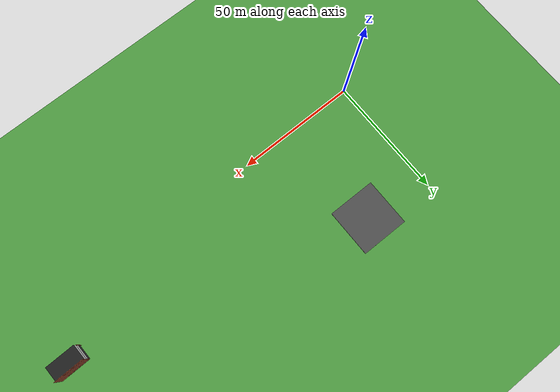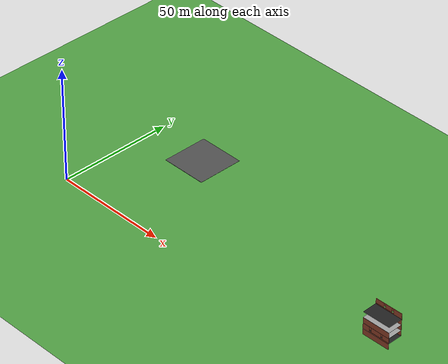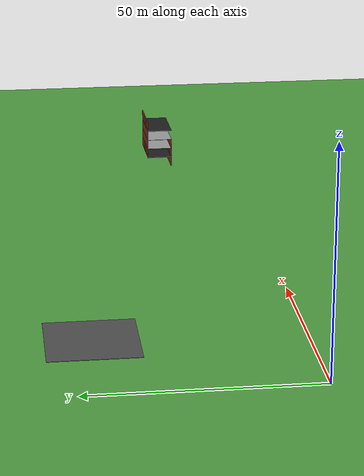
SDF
<sdf version="1.7">
 <world name="default">
  <model name="ground_plane">
   <static>1</static>
   <link name="link">
    <collision name="collision">
     <geometry><plane><normal>0 0 1</normal><size>100 100</size></plane></geometry>
     <surface>
      <contact><collide_bitmask>65535</collide_bitmask></contact>
      <friction><ode><mu>100</mu><mu2>50</mu2></ode></friction>
     </surface>
    </collision>
    <visual name="grass">
     <pose>0 0 -0.1 0 -0 0</pose>
     <cast_shadows>0</cast_shadows>
     <geometry><plane><normal>0 0 1</normal><size>1000 1000</size></plane></geometry>
     <material>
      <script><uri>file://media/materials/scripts/gazebo.material</uri><name>Gazebo/Grass</name></script>
     </material>
    </visual>
   </link>
  </model>
  <model name="asphalt_plane">
   <static>1</static>
   <link name="link">
    <collision name="collision"><geometry><box><size>20 20 0.1</size></box></geometry></collision>
    <visual name="visual">
     <cast_shadows>0</cast_shadows>
     <geometry><box><size>20 20 0.1</size></box></geometry>
     <material>
      <script>
       <uri>model://asphalt_plane/materials/scripts</uri>
       <uri>model://asphalt_plane/materials/textures</uri>
       <name>vrc/asphalt</name>
      </script>
     </material>
    </visual>
   </link>
   <pose>26.7323 45.4974 0 0 -0 0</pose>
  </model>
  <model name="my_building_1">
   <link name="Floor_13">
    <pose>-4.12557 0 2.5 0 -0 0</pose>
    <inertial>
     <mass>1</mass>
     <inertia><ixx>1</ixx><ixy>0</ixy><ixz>0</ixz><iyy>1</iyy><iyz>0</iyz><izz>1</izz></inertia>
    </inertial>
    <visual name="Floor_13_Visual">
     <pose>0 0 0.05 0 -0 0</pose>
     <geometry><box><size>6.5 12.25 0.1</size></box></geometry>
     <material>
      <script><uri>file://media/materials/scripts/gazebo.material</uri><name>Gazebo/Black</name></script>
      <ambient>1 1 1 1</ambient>
      <shader type="pixel"><normal_map>__default__</normal_map></shader>
      <diffuse>0 0 0 1</diffuse>
      <specular>0.1 0.1 0.1 1</specular>
      <emissive>0 0 0 1</emissive>
     </material>
     <meta><layer>1</layer></meta>
    </visual>
    <collision name="Floor_13_Collision">
     <pose>0 0 0.05 0 -0 0</pose>
     <geometry><box><size>6.5 12.25 0.1</size></box></geometry>
     <surface>
      <friction>
       <ode><mu>1</mu><mu2>1</mu2><fdir1>0 0 0</fdir1><slip1>0</slip1><slip2>0</slip2></ode>
       <torsional>
        <coefficient>1</coefficient>
        <patch_radius>0</patch_radius>
        <surface_radius>0</surface_radius>
        <use_patch_radius>1</use_patch_radius>
        <ode><slip>0</slip></ode>
       </torsional>
      </friction>
      <bounce><restitution_coefficient>0</restitution_coefficient><threshold>1e+06</threshold></bounce>
      <contact>
       <collide_without_contact>0</collide_without_contact>
       <collide_without_contact_bitmask>1</collide_without_contact_bitmask>
       <collide_bitmask>1</collide_bitmask>
       <ode>
        <soft_cfm>0</soft_cfm>
        <soft_erp>0.2</soft_erp>
        <kp>1e+13</kp>
        <kd>1</kd>
        <max_vel>0.01</max_vel>
        <min_depth>0</min_depth>
       </ode>
       <bullet>
        <split_impulse>1</split_impulse>
        <split_impulse_penetration_threshold>-0.01</split_impulse_penetration_threshold>
        <soft_cfm>0</soft_cfm>
        <soft_erp>0.2</soft_erp>
        <kp>1e+13</kp>
        <kd>1</kd>
       </bullet>
      </contact>
     </surface>
    </collision>
   </link>
   <link name="Floor_14">
    <pose>-4.12557 0 5 0 -0 0</pose>
    <visual name="Floor_14_Visual">
     <pose>0 0 0.05 0 -0 0</pose>
     <geometry><box><size>6.5 12.25 0.1</size></box></geometry>
     <material>
      <script><uri>file://media/materials/scripts/gazebo.material</uri><name>Gazebo/Grey</name></script>
      <ambient>1 1 1 1</ambient>
      <shader type="pixel"/>
     </material>
     <meta><layer>2</layer></meta>
    </visual>
    <collision name="Floor_14_Collision">
     <pose>0 0 0.05 0 -0 0</pose>
     <geometry><box><size>6.5 12.25 0.1</size></box></geometry>
     <surface>
      <friction>
       <ode><mu>1</mu><mu2>1</mu2><fdir1>0 0 0</fdir1><slip1>0</slip1><slip2>0</slip2></ode>
       <torsional>
        <coefficient>1</coefficient>
        <patch_radius>0</patch_radius>
        <surface_radius>0</surface_radius>
        <use_patch_radius>1</use_patch_radius>
        <ode><slip>0</slip></ode>
       </torsional>
      </friction>
      <bounce><restitution_coefficient>0</restitution_coefficient><threshold>1e+06</threshold></bounce>
      <contact>
       <collide_without_contact>0</collide_without_contact>
       <collide_without_contact_bitmask>1</collide_without_contact_bitmask>
       <collide_bitmask>1</collide_bitmask>
       <ode>
        <soft_cfm>0</soft_cfm>
        <soft_erp>0.2</soft_erp>
        <kp>1e+13</kp>
        <kd>1</kd>
        <max_vel>0.01</max_vel>
        <min_depth>0</min_depth>
       </ode>
       <bullet>
        <split_impulse>1</split_impulse>
        <split_impulse_penetration_threshold>-0.01</split_impulse_penetration_threshold>
        <soft_cfm>0</soft_cfm>
        <soft_erp>0.2</soft_erp>
        <kp>1e+13</kp>
        <kd>1</kd>
       </bullet>
      </contact>
     </surface>
    </collision>
   </link>
   <link name="Floor_15">
    <pose>-4.12557 0 7.5 0 -0 0</pose>
    <visual name="Floor_15_Visual">
     <pose>0 0 0.05 0 -0 0</pose>
     <geometry><box><size>6.5 12.25 0.1</size></box></geometry>
     <material>
      <script><uri>file://media/materials/scripts/gazebo.material</uri><name>Gazebo/Grey</name></script>
      <ambient>1 1 1 1</ambient>
      <shader type="pixel"/>
     </material>
     <meta><layer>3</layer></meta>
    </visual>
    <collision name="Floor_15_Collision">
     <pose>0 0 0.05 0 -0 0</pose>
     <geometry><box><size>6.5 12.25 0.1</size></box></geometry>
     <surface>
      <friction>
       <ode><mu>1</mu><mu2>1</mu2><fdir1>0 0 0</fdir1><slip1>0</slip1><slip2>0</slip2></ode>
       <torsional>
        <coefficient>1</coefficient>
        <patch_radius>0</patch_radius>
        <surface_radius>0</surface_radius>
        <use_patch_radius>1</use_patch_radius>
        <ode><slip>0</slip></ode>
       </torsional>
      </friction>
      <bounce><restitution_coefficient>0</restitution_coefficient><threshold>1e+06</threshold></bounce>
      <contact>
       <collide_without_contact>0</collide_without_contact>
       <collide_without_contact_bitmask>1</collide_without_contact_bitmask>
       <collide_bitmask>1</collide_bitmask>
       <ode>
        <soft_cfm>0</soft_cfm>
        <soft_erp>0.2</soft_erp>
        <kp>1e+13</kp>
        <kd>1</kd>
        <max_vel>0.01</max_vel>
        <min_depth>0</min_depth>
       </ode>
       <bullet>
        <split_impulse>1</split_impulse>
        <split_impulse_penetration_threshold>-0.01</split_impulse_penetration_threshold>
        <soft_cfm>0</soft_cfm>
        <soft_erp>0.2</soft_erp>
        <kp>1e+13</kp>
        <kd>1</kd>
       </bullet>
      </contact>
     </surface>
    </collision>
   </link>
   <link name="Floor_16">
    <pose>-4.12557 0 10 0 -0 0</pose>
    <inertial>
     <mass>1</mass>
     <inertia><ixx>1</ixx><ixy>0</ixy><ixz>0</ixz><iyy>1</iyy><iyz>0</iyz><izz>1</izz></inertia>
    </inertial>
    <visual name="Floor_16_Visual">
     <pose>0 0 0.05 0 -0 0</pose>
     <geometry><box><size>6.5 12.25 0.1</size></box></geometry>
     <material>
      <script><uri>file://media/materials/scripts/gazebo.material</uri><name>Gazebo/Black</name></script>
      <ambient>1 1 1 1</ambient>
      <shader type="pixel"><normal_map>__default__</normal_map></shader>
      <diffuse>0 0 0 1</diffuse>
      <specular>0.1 0.1 0.1 1</specular>
      <emissive>0 0 0 1</emissive>
     </material>
     <meta><layer>4</layer></meta>
    </visual>
    <collision name="Floor_16_Collision">
     <pose>0 0 0.05 0 -0 0</pose>
     <geometry><box><size>6.5 12.25 0.1</size></box></geometry>
     <surface>
      <friction>
       <ode><mu>1</mu><mu2>1</mu2><fdir1>0 0 0</fdir1><slip1>0</slip1><slip2>0</slip2></ode>
       <torsional>
        <coefficient>1</coefficient>
        <patch_radius>0</patch_radius>
        <surface_radius>0</surface_radius>
        <use_patch_radius>1</use_patch_radius>
        <ode><slip>0</slip></ode>
       </torsional>
      </friction>
      <bounce><restitution_coefficient>0</restitution_coefficient><threshold>1e+06</threshold></bounce>
      <contact>
       <collide_without_contact>0</collide_without_contact>
       <collide_without_contact_bitmask>1</collide_without_contact_bitmask>
       <collide_bitmask>1</collide_bitmask>
       <ode>
        <soft_cfm>0</soft_cfm>
        <soft_erp>0.2</soft_erp>
        <kp>1e+13</kp>
        <kd>1</kd>
        <max_vel>0.01</max_vel>
        <min_depth>0</min_depth>
       </ode>
       <bullet>
        <split_impulse>1</split_impulse>
        <split_impulse_penetration_threshold>-0.01</split_impulse_penetration_threshold>
        <soft_cfm>0</soft_cfm>
        <soft_erp>0.2</soft_erp>
        <kp>1e+13</kp>
        <kd>1</kd>
       </bullet>
      </contact>
     </surface>
    </collision>
   </link>
   <link name="Wall_21">
    <pose>-7.30057 0 0 0 0 -1.5708</pose>
    <visual name="Wall_21_Visual">
     <pose>0 0 1.25 0 -0 0</pose>
     <geometry><box><size>12.25 0.15 2.5</size></box></geometry>
     <material>
      <script><uri>file://media/materials/scripts/gazebo.material</uri><name>Gazebo/Bricks</name></script>
      <ambient>1 1 1 1</ambient>
      <shader type="pixel"/>
     </material>
     <meta><layer>0</layer></meta>
    </visual>
    <collision name="Wall_21_Collision">
     <pose>0 0 1.25 0 -0 0</pose>
     <geometry><box><size>12.25 0.15 2.5</size></box></geometry>
     <surface>
      <friction>
       <ode><mu>1</mu><mu2>1</mu2><fdir1>0 0 0</fdir1><slip1>0</slip1><slip2>0</slip2></ode>
       <torsional>
        <coefficient>1</coefficient>
        <patch_radius>0</patch_radius>
        <surface_radius>0</surface_radius>
        <use_patch_radius>1</use_patch_radius>
        <ode><slip>0</slip></ode>
       </torsional>
      </friction>
      <bounce><restitution_coefficient>0</restitution_coefficient><threshold>1e+06</threshold></bounce>
      <contact>
       <collide_without_contact>0</collide_without_contact>
       <collide_without_contact_bitmask>1</collide_without_contact_bitmask>
       <collide_bitmask>1</collide_bitmask>
       <ode>
        <soft_cfm>0</soft_cfm>
        <soft_erp>0.2</soft_erp>
        <kp>1e+13</kp>
        <kd>1</kd>
        <max_vel>0.01</max_vel>
        <min_depth>0</min_depth>
       </ode>
       <bullet>
        <split_impulse>1</split_impulse>
        <split_impulse_penetration_threshold>-0.01</split_impulse_penetration_threshold>
        <soft_cfm>0</soft_cfm>
        <soft_erp>0.2</soft_erp>
        <kp>1e+13</kp>
        <kd>1</kd>
       </bullet>
      </contact>
     </surface>
    </collision>
   </link>
   <link name="Wall_76">
    <pose>-0.950574 0 2.5 0 -0 1.5708</pose>
    <visual name="Wall_76_Visual_4">
     <pose>4.35586 0 1.5 0 -0 0</pose>
     <geometry><box><size>3.53828 0.15 2</size></box></geometry>
     <material>
      <script><uri>file://media/materials/scripts/gazebo.material</uri><name>Gazebo/Bricks</name></script>
      <ambient>1 1 1 1</ambient>
      <shader type="pixel"/>
     </material>
     <meta><layer>1</layer></meta>
    </visual>
    <visual name="Wall_76_Visual_7">
     <pose>2.18672 0 1.9 0 -0 0</pose>
     <geometry><box><size>0.8 0.15 1.2</size></box></geometry>
     <material>
      <script><uri>file://media/materials/scripts/gazebo.material</uri><name>Gazebo/Bricks</name></script>
      <ambient>1 1 1 1</ambient>
      <shader type="pixel"/>
     </material>
     <meta><layer>1</layer></meta>
    </visual>
    <visual name="Wall_76_Visual_5">
     <pose>-2.44171 0 1.9 0 -0 0</pose>
     <geometry><box><size>0.8 0.15 1.2</size></box></geometry>
     <material>
      <script><uri>file://media/materials/scripts/gazebo.material</uri><name>Gazebo/Bricks</name></script>
      <ambient>1 1 1 1</ambient>
      <shader type="pixel"/>
     </material>
     <meta><layer>1</layer></meta>
    </visual>
    <visual name="Wall_76_Visual_6">
     <pose>-0.074293 0 1.9 0 -0 0</pose>
     <geometry><box><size>0.8 0.15 1.2</size></box></geometry>
     <material>
      <script><uri>file://media/materials/scripts/gazebo.material</uri><name>Gazebo/Bricks</name></script>
      <ambient>1 1 1 1</ambient>
      <shader type="pixel"/>
     </material>
     <meta><layer>1</layer></meta>
    </visual>
    <visual name="Wall_76_Visual_0">
     <pose>-4.48336 0 1.25 0 -0 0</pose>
     <geometry><box><size>3.28329 0.15 2.5</size></box></geometry>
     <material>
      <script><uri>file://media/materials/scripts/gazebo.material</uri><name>Gazebo/Bricks</name></script>
      <ambient>1 1 1 1</ambient>
      <shader type="pixel"/>
     </material>
     <meta><layer>1</layer></meta>
    </visual>
    <visual name="Wall_76_Visual_3">
     <pose>1.05621 0 1.5 0 -0 0</pose>
     <geometry><box><size>1.46102 0.15 2</size></box></geometry>
     <material>
      <script><uri>file://media/materials/scripts/gazebo.material</uri><name>Gazebo/Bricks</name></script>
      <ambient>1 1 1 1</ambient>
      <shader type="pixel"/>
     </material>
     <meta><layer>1</layer></meta>
    </visual>
    <visual name="Wall_76_Visual_1">
     <pose>1.64164 0 0.25 0 -0 0</pose>
     <geometry><box><size>8.96671 0.15 0.5</size></box></geometry>
     <material>
      <script><uri>file://media/materials/scripts/gazebo.material</uri><name>Gazebo/Bricks</name></script>
      <ambient>1 1 1 1</ambient>
      <shader type="pixel"/>
     </material>
     <meta><layer>1</layer></meta>
    </visual>
    <visual name="Wall_76_Visual_2">
     <pose>-1.258 0 1.5 0 -0 0</pose>
     <geometry><box><size>1.56742 0.15 2</size></box></geometry>
     <material>
      <script><uri>file://media/materials/scripts/gazebo.material</uri><name>Gazebo/Bricks</name></script>
      <ambient>1 1 1 1</ambient>
      <shader type="pixel"/>
     </material>
     <meta><layer>1</layer></meta>
    </visual>
    <collision name="Wall_76_Collision_3">
     <pose>1.05621 0 1.5 0 -0 0</pose>
     <geometry><box><size>1.46102 0.15 2</size></box></geometry>
     <surface>
      <friction>
       <ode><mu>1</mu><mu2>1</mu2><fdir1>0 0 0</fdir1><slip1>0</slip1><slip2>0</slip2></ode>
       <torsional>
        <coefficient>1</coefficient>
        <patch_radius>0</patch_radius>
        <surface_radius>0</surface_radius>
        <use_patch_radius>1</use_patch_radius>
        <ode><slip>0</slip></ode>
       </torsional>
      </friction>
      <bounce><restitution_coefficient>0</restitution_coefficient><threshold>1e+06</threshold></bounce>
      <contact>
       <collide_without_contact>0</collide_without_contact>
       <collide_without_contact_bitmask>1</collide_without_contact_bitmask>
       <collide_bitmask>1</collide_bitmask>
       <ode>
        <soft_cfm>0</soft_cfm>
        <soft_erp>0.2</soft_erp>
        <kp>1e+13</kp>
        <kd>1</kd>
        <max_vel>0.01</max_vel>
        <min_depth>0</min_depth>
       </ode>
       <bullet>
        <split_impulse>1</split_impulse>
        <split_impulse_penetration_threshold>-0.01</split_impulse_penetration_threshold>
        <soft_cfm>0</soft_cfm>
        <soft_erp>0.2</soft_erp>
        <kp>1e+13</kp>
        <kd>1</kd>
       </bullet>
      </contact>
     </surface>
    </collision>
    <collision name="Wall_76_Collision_1">
     <pose>1.64164 0 0.25 0 -0 0</pose>
     <geometry><box><size>8.96671 0.15 0.5</size></box></geometry>
     <surface>
      <friction>
       <ode><mu>1</mu><mu2>1</mu2><fdir1>0 0 0</fdir1><slip1>0</slip1><slip2>0</slip2></ode>
       <torsional>
        <coefficient>1</coefficient>
        <patch_radius>0</patch_radius>
        <surface_radius>0</surface_radius>
        <use_patch_radius>1</use_patch_radius>
        <ode><slip>0</slip></ode>
       </torsional>
      </friction>
      <bounce><restitution_coefficient>0</restitution_coefficient><threshold>1e+06</threshold></bounce>
      <contact>
       <collide_without_contact>0</collide_without_contact>
       <collide_without_contact_bitmask>1</collide_without_contact_bitmask>
       <collide_bitmask>1</collide_bitmask>
       <ode>
        <soft_cfm>0</soft_cfm>
        <soft_erp>0.2</soft_erp>
        <kp>1e+13</kp>
        <kd>1</kd>
        <max_vel>0.01</max_vel>
        <min_depth>0</min_depth>
       </ode>
       <bullet>
        <split_impulse>1</split_impulse>
        <split_impulse_penetration_threshold>-0.01</split_impulse_penetration_threshold>
        <soft_cfm>0</soft_cfm>
        <soft_erp>0.2</soft_erp>
        <kp>1e+13</kp>
        <kd>1</kd>
       </bullet>
      </contact>
     </surface>
    </collision>
    <collision name="Wall_76_Collision_6">
     <pose>-0.074293 0 1.9 0 -0 0</pose>
     <geometry><box><size>0.8 0.15 1.2</size></box></geometry>
     <surface>
      <friction>
       <ode><mu>1</mu><mu2>1</mu2><fdir1>0 0 0</fdir1><slip1>0</slip1><slip2>0</slip2></ode>
       <torsional>
        <coefficient>1</coefficient>
        <patch_radius>0</patch_radius>
        <surface_radius>0</surface_radius>
        <use_patch_radius>1</use_patch_radius>
        <ode><slip>0</slip></ode>
       </torsional>
      </friction>
      <bounce><restitution_coefficient>0</restitution_coefficient><threshold>1e+06</threshold></bounce>
      <contact>
       <collide_without_contact>0</collide_without_contact>
       <collide_without_contact_bitmask>1</collide_without_contact_bitmask>
       <collide_bitmask>1</collide_bitmask>
       <ode>
        <soft_cfm>0</soft_cfm>
        <soft_erp>0.2</soft_erp>
        <kp>1e+13</kp>
        <kd>1</kd>
        <max_vel>0.01</max_vel>
        <min_depth>0</min_depth>
       </ode>
       <bullet>
        <split_impulse>1</split_impulse>
        <split_impulse_penetration_threshold>-0.01</split_impulse_penetration_threshold>
        <soft_cfm>0</soft_cfm>
        <soft_erp>0.2</soft_erp>
        <kp>1e+13</kp>
        <kd>1</kd>
       </bullet>
      </contact>
     </surface>
    </collision>
    <collision name="Wall_76_Collision_5">
     <pose>-2.44171 0 1.9 0 -0 0</pose>
     <geometry><box><size>0.8 0.15 1.2</size></box></geometry>
     <surface>
      <friction>
       <ode><mu>1</mu><mu2>1</mu2><fdir1>0 0 0</fdir1><slip1>0</slip1><slip2>0</slip2></ode>
       <torsional>
        <coefficient>1</coefficient>
        <patch_radius>0</patch_radius>
        <surface_radius>0</surface_radius>
        <use_patch_radius>1</use_patch_radius>
        <ode><slip>0</slip></ode>
       </torsional>
      </friction>
      <bounce><restitution_coefficient>0</restitution_coefficient><threshold>1e+06</threshold></bounce>
      <contact>
       <collide_without_contact>0</collide_without_contact>
       <collide_without_contact_bitmask>1</collide_without_contact_bitmask>
       <collide_bitmask>1</collide_bitmask>
       <ode>
        <soft_cfm>0</soft_cfm>
        <soft_erp>0.2</soft_erp>
        <kp>1e+13</kp>
        <kd>1</kd>
        <max_vel>0.01</max_vel>
        <min_depth>0</min_depth>
       </ode>
       <bullet>
        <split_impulse>1</split_impulse>
        <split_impulse_penetration_threshold>-0.01</split_impulse_penetration_threshold>
        <soft_cfm>0</soft_cfm>
        <soft_erp>0.2</soft_erp>
        <kp>1e+13</kp>
        <kd>1</kd>
       </bullet>
      </contact>
     </surface>
    </collision>
    <collision name="Wall_76_Collision_0">
     <pose>-4.48336 0 1.25 0 -0 0</pose>
     <geometry><box><size>3.28329 0.15 2.5</size></box></geometry>
     <surface>
      <friction>
       <ode><mu>1</mu><mu2>1</mu2><fdir1>0 0 0</fdir1><slip1>0</slip1><slip2>0</slip2></ode>
       <torsional>
        <coefficient>1</coefficient>
        <patch_radius>0</patch_radius>
        <surface_radius>0</surface_radius>
        <use_patch_radius>1</use_patch_radius>
        <ode><slip>0</slip></ode>
       </torsional>
      </friction>
      <bounce><restitution_coefficient>0</restitution_coefficient><threshold>1e+06</threshold></bounce>
      <contact>
       <collide_without_contact>0</collide_without_contact>
       <collide_without_contact_bitmask>1</collide_without_contact_bitmask>
       <collide_bitmask>1</collide_bitmask>
       <ode>
        <soft_cfm>0</soft_cfm>
        <soft_erp>0.2</soft_erp>
        <kp>1e+13</kp>
        <kd>1</kd>
        <max_vel>0.01</max_vel>
        <min_depth>0</min_depth>
       </ode>
       <bullet>
        <split_impulse>1</split_impulse>
        <split_impulse_penetration_threshold>-0.01</split_impulse_penetration_threshold>
        <soft_cfm>0</soft_cfm>
        <soft_erp>0.2</soft_erp>
        <kp>1e+13</kp>
        <kd>1</kd>
       </bullet>
      </contact>
     </surface>
    </collision>
    <collision name="Wall_76_Collision_2">
     <pose>-1.258 0 1.5 0 -0 0</pose>
     <geometry><box><size>1.56742 0.15 2</size></box></geometry>
     <surface>
      <friction>
       <ode><mu>1</mu><mu2>1</mu2><fdir1>0 0 0</fdir1><slip1>0</slip1><slip2>0</slip2></ode>
       <torsional>
        <coefficient>1</coefficient>
        <patch_radius>0</patch_radius>
        <surface_radius>0</surface_radius>
        <use_patch_radius>1</use_patch_radius>
        <ode><slip>0</slip></ode>
       </torsional>
      </friction>
      <bounce><restitution_coefficient>0</restitution_coefficient><threshold>1e+06</threshold></bounce>
      <contact>
       <collide_without_contact>0</collide_without_contact>
       <collide_without_contact_bitmask>1</collide_without_contact_bitmask>
       <collide_bitmask>1</collide_bitmask>
       <ode>
        <soft_cfm>0</soft_cfm>
        <soft_erp>0.2</soft_erp>
        <kp>1e+13</kp>
        <kd>1</kd>
        <max_vel>0.01</max_vel>
        <min_depth>0</min_depth>
       </ode>
       <bullet>
        <split_impulse>1</split_impulse>
        <split_impulse_penetration_threshold>-0.01</split_impulse_penetration_threshold>
        <soft_cfm>0</soft_cfm>
        <soft_erp>0.2</soft_erp>
        <kp>1e+13</kp>
        <kd>1</kd>
       </bullet>
      </contact>
     </surface>
    </collision>
    <collision name="Wall_76_Collision_7">
     <pose>2.18672 0 1.9 0 -0 0</pose>
     <geometry><box><size>0.8 0.15 1.2</size></box></geometry>
     <surface>
      <friction>
       <ode><mu>1</mu><mu2>1</mu2><fdir1>0 0 0</fdir1><slip1>0</slip1><slip2>0</slip2></ode>
       <torsional>
        <coefficient>1</coefficient>
        <patch_radius>0</patch_radius>
        <surface_radius>0</surface_radius>
        <use_patch_radius>1</use_patch_radius>
        <ode><slip>0</slip></ode>
       </torsional>
      </friction>
      <bounce><restitution_coefficient>0</restitution_coefficient><threshold>1e+06</threshold></bounce>
      <contact>
       <collide_without_contact>0</collide_without_contact>
       <collide_without_contact_bitmask>1</collide_without_contact_bitmask>
       <collide_bitmask>1</collide_bitmask>
       <ode>
        <soft_cfm>0</soft_cfm>
        <soft_erp>0.2</soft_erp>
        <kp>1e+13</kp>
        <kd>1</kd>
        <max_vel>0.01</max_vel>
        <min_depth>0</min_depth>
       </ode>
       <bullet>
        <split_impulse>1</split_impulse>
        <split_impulse_penetration_threshold>-0.01</split_impulse_penetration_threshold>
        <soft_cfm>0</soft_cfm>
        <soft_erp>0.2</soft_erp>
        <kp>1e+13</kp>
        <kd>1</kd>
       </bullet>
      </contact>
     </surface>
    </collision>
    <collision name="Wall_76_Collision_4">
     <pose>4.35586 0 1.5 0 -0 0</pose>
     <geometry><box><size>3.53828 0.15 2</size></box></geometry>
     <surface>
      <friction>
       <ode><mu>1</mu><mu2>1</mu2><fdir1>0 0 0</fdir1><slip1>0</slip1><slip2>0</slip2></ode>
       <torsional>
        <coefficient>1</coefficient>
        <patch_radius>0</patch_radius>
        <surface_radius>0</surface_radius>
        <use_patch_radius>1</use_patch_radius>
        <ode><slip>0</slip></ode>
       </torsional>
      </friction>
      <bounce><restitution_coefficient>0</restitution_coefficient><threshold>1e+06</threshold></bounce>
      <contact>
       <collide_without_contact>0</collide_without_contact>
       <collide_without_contact_bitmask>1</collide_without_contact_bitmask>
       <collide_bitmask>1</collide_bitmask>
       <ode>
        <soft_cfm>0</soft_cfm>
        <soft_erp>0.2</soft_erp>
        <kp>1e+13</kp>
        <kd>1</kd>
        <max_vel>0.01</max_vel>
        <min_depth>0</min_depth>
       </ode>
       <bullet>
        <split_impulse>1</split_impulse>
        <split_impulse_penetration_threshold>-0.01</split_impulse_penetration_threshold>
        <soft_cfm>0</soft_cfm>
        <soft_erp>0.2</soft_erp>
        <kp>1e+13</kp>
        <kd>1</kd>
       </bullet>
      </contact>
     </surface>
    </collision>
   </link>
   <link name="Wall_78">
    <pose>-7.30057 0 2.5 0 0 -1.5708</pose>
    <visual name="Wall_78_Visual_1">
     <pose>1.54304 0 0.25 0 -0 0</pose>
     <geometry><box><size>9.16393 0.15 0.5</size></box></geometry>
     <material>
      <script><uri>file://media/materials/scripts/gazebo.material</uri><name>Gazebo/Bricks</name></script>
      <ambient>1 1 1 1</ambient>
      <shader type="pixel"/>
     </material>
     <meta><layer>1</layer></meta>
    </visual>
    <visual name="Wall_78_Visual_5">
     <pose>2.65451 0 1.9 0 -0 0</pose>
     <geometry><box><size>0.8 0.15 1.2</size></box></geometry>
     <material>
      <script><uri>file://media/materials/scripts/gazebo.material</uri><name>Gazebo/Bricks</name></script>
      <ambient>1 1 1 1</ambient>
      <shader type="pixel"/>
     </material>
     <meta><layer>1</layer></meta>
    </visual>
    <visual name="Wall_78_Visual_3">
     <pose>4.58976 0 1.5 0 -0 0</pose>
     <geometry><box><size>3.07049 0.15 2</size></box></geometry>
     <material>
      <script><uri>file://media/materials/scripts/gazebo.material</uri><name>Gazebo/Bricks</name></script>
      <ambient>1 1 1 1</ambient>
      <shader type="pixel"/>
     </material>
     <meta><layer>1</layer></meta>
    </visual>
    <visual name="Wall_78_Visual_4">
     <pose>-2.63893 0 1.9 0 -0 0</pose>
     <geometry><box><size>0.8 0.15 1.2</size></box></geometry>
     <material>
      <script><uri>file://media/materials/scripts/gazebo.material</uri><name>Gazebo/Bricks</name></script>
      <ambient>1 1 1 1</ambient>
      <shader type="pixel"/>
     </material>
     <meta><layer>1</layer></meta>
    </visual>
    <visual name="Wall_78_Visual_2">
     <pose>0.007793 0 1.5 0 -0 0</pose>
     <geometry><box><size>4.49344 0.15 2</size></box></geometry>
     <material>
      <script><uri>file://media/materials/scripts/gazebo.material</uri><name>Gazebo/Bricks</name></script>
      <ambient>1 1 1 1</ambient>
      <shader type="pixel"/>
     </material>
     <meta><layer>1</layer></meta>
    </visual>
    <visual name="Wall_78_Visual_0">
     <pose>-4.58196 0 1.25 0 -0 0</pose>
     <geometry><box><size>3.08607 0.15 2.5</size></box></geometry>
     <material>
      <script><uri>file://media/materials/scripts/gazebo.material</uri><name>Gazebo/Bricks</name></script>
      <ambient>1 1 1 1</ambient>
      <shader type="pixel"/>
     </material>
     <meta><layer>1</layer></meta>
    </visual>
    <collision name="Wall_78_Collision_0">
     <pose>-4.58196 0 1.25 0 -0 0</pose>
     <geometry><box><size>3.08607 0.15 2.5</size></box></geometry>
     <surface>
      <friction>
       <ode><mu>1</mu><mu2>1</mu2><fdir1>0 0 0</fdir1><slip1>0</slip1><slip2>0</slip2></ode>
       <torsional>
        <coefficient>1</coefficient>
        <patch_radius>0</patch_radius>
        <surface_radius>0</surface_radius>
        <use_patch_radius>1</use_patch_radius>
        <ode><slip>0</slip></ode>
       </torsional>
      </friction>
      <bounce><restitution_coefficient>0</restitution_coefficient><threshold>1e+06</threshold></bounce>
      <contact>
       <collide_without_contact>0</collide_without_contact>
       <collide_without_contact_bitmask>1</collide_without_contact_bitmask>
       <collide_bitmask>1</collide_bitmask>
       <ode>
        <soft_cfm>0</soft_cfm>
        <soft_erp>0.2</soft_erp>
        <kp>1e+13</kp>
        <kd>1</kd>
        <max_vel>0.01</max_vel>
        <min_depth>0</min_depth>
       </ode>
       <bullet>
        <split_impulse>1</split_impulse>
        <split_impulse_penetration_threshold>-0.01</split_impulse_penetration_threshold>
        <soft_cfm>0</soft_cfm>
        <soft_erp>0.2</soft_erp>
        <kp>1e+13</kp>
        <kd>1</kd>
       </bullet>
      </contact>
     </surface>
    </collision>
    <collision name="Wall_78_Collision_1">
     <pose>1.54304 0 0.25 0 -0 0</pose>
     <geometry><box><size>9.16393 0.15 0.5</size></box></geometry>
     <surface>
      <friction>
       <ode><mu>1</mu><mu2>1</mu2><fdir1>0 0 0</fdir1><slip1>0</slip1><slip2>0</slip2></ode>
       <torsional>
        <coefficient>1</coefficient>
        <patch_radius>0</patch_radius>
        <surface_radius>0</surface_radius>
        <use_patch_radius>1</use_patch_radius>
        <ode><slip>0</slip></ode>
       </torsional>
      </friction>
      <bounce><restitution_coefficient>0</restitution_coefficient><threshold>1e+06</threshold></bounce>
      <contact>
       <collide_without_contact>0</collide_without_contact>
       <collide_without_contact_bitmask>1</collide_without_contact_bitmask>
       <collide_bitmask>1</collide_bitmask>
       <ode>
        <soft_cfm>0</soft_cfm>
        <soft_erp>0.2</soft_erp>
        <kp>1e+13</kp>
        <kd>1</kd>
        <max_vel>0.01</max_vel>
        <min_depth>0</min_depth>
       </ode>
       <bullet>
        <split_impulse>1</split_impulse>
        <split_impulse_penetration_threshold>-0.01</split_impulse_penetration_threshold>
        <soft_cfm>0</soft_cfm>
        <soft_erp>0.2</soft_erp>
        <kp>1e+13</kp>
        <kd>1</kd>
       </bullet>
      </contact>
     </surface>
    </collision>
    <collision name="Wall_78_Collision_5">
     <pose>2.65451 0 1.9 0 -0 0</pose>
     <geometry><box><size>0.8 0.15 1.2</size></box></geometry>
     <surface>
      <friction>
       <ode><mu>1</mu><mu2>1</mu2><fdir1>0 0 0</fdir1><slip1>0</slip1><slip2>0</slip2></ode>
       <torsional>
        <coefficient>1</coefficient>
        <patch_radius>0</patch_radius>
        <surface_radius>0</surface_radius>
        <use_patch_radius>1</use_patch_radius>
        <ode><slip>0</slip></ode>
       </torsional>
      </friction>
      <bounce><restitution_coefficient>0</restitution_coefficient><threshold>1e+06</threshold></bounce>
      <contact>
       <collide_without_contact>0</collide_without_contact>
       <collide_without_contact_bitmask>1</collide_without_contact_bitmask>
       <collide_bitmask>1</collide_bitmask>
       <ode>
        <soft_cfm>0</soft_cfm>
        <soft_erp>0.2</soft_erp>
        <kp>1e+13</kp>
        <kd>1</kd>
        <max_vel>0.01</max_vel>
        <min_depth>0</min_depth>
       </ode>
       <bullet>
        <split_impulse>1</split_impulse>
        <split_impulse_penetration_threshold>-0.01</split_impulse_penetration_threshold>
        <soft_cfm>0</soft_cfm>
        <soft_erp>0.2</soft_erp>
        <kp>1e+13</kp>
        <kd>1</kd>
       </bullet>
      </contact>
     </surface>
    </collision>
    <collision name="Wall_78_Collision_3">
     <pose>4.58976 0 1.5 0 -0 0</pose>
     <geometry><box><size>3.07049 0.15 2</size></box></geometry>
     <surface>
      <friction>
       <ode><mu>1</mu><mu2>1</mu2><fdir1>0 0 0</fdir1><slip1>0</slip1><slip2>0</slip2></ode>
       <torsional>
        <coefficient>1</coefficient>
        <patch_radius>0</patch_radius>
        <surface_radius>0</surface_radius>
        <use_patch_radius>1</use_patch_radius>
        <ode><slip>0</slip></ode>
       </torsional>
      </friction>
      <bounce><restitution_coefficient>0</restitution_coefficient><threshold>1e+06</threshold></bounce>
      <contact>
       <collide_without_contact>0</collide_without_contact>
       <collide_without_contact_bitmask>1</collide_without_contact_bitmask>
       <collide_bitmask>1</collide_bitmask>
       <ode>
        <soft_cfm>0</soft_cfm>
        <soft_erp>0.2</soft_erp>
        <kp>1e+13</kp>
        <kd>1</kd>
        <max_vel>0.01</max_vel>
        <min_depth>0</min_depth>
       </ode>
       <bullet>
        <split_impulse>1</split_impulse>
        <split_impulse_penetration_threshold>-0.01</split_impulse_penetration_threshold>
        <soft_cfm>0</soft_cfm>
        <soft_erp>0.2</soft_erp>
        <kp>1e+13</kp>
        <kd>1</kd>
       </bullet>
      </contact>
     </surface>
    </collision>
    <collision name="Wall_78_Collision_4">
     <pose>-2.63893 0 1.9 0 -0 0</pose>
     <geometry><box><size>0.8 0.15 1.2</size></box></geometry>
     <surface>
      <friction>
       <ode><mu>1</mu><mu2>1</mu2><fdir1>0 0 0</fdir1><slip1>0</slip1><slip2>0</slip2></ode>
       <torsional>
        <coefficient>1</coefficient>
        <patch_radius>0</patch_radius>
        <surface_radius>0</surface_radius>
        <use_patch_radius>1</use_patch_radius>
        <ode><slip>0</slip></ode>
       </torsional>
      </friction>
      <bounce><restitution_coefficient>0</restitution_coefficient><threshold>1e+06</threshold></bounce>
      <contact>
       <collide_without_contact>0</collide_without_contact>
       <collide_without_contact_bitmask>1</collide_without_contact_bitmask>
       <collide_bitmask>1</collide_bitmask>
       <ode>
        <soft_cfm>0</soft_cfm>
        <soft_erp>0.2</soft_erp>
        <kp>1e+13</kp>
        <kd>1</kd>
        <max_vel>0.01</max_vel>
        <min_depth>0</min_depth>
       </ode>
       <bullet>
        <split_impulse>1</split_impulse>
        <split_impulse_penetration_threshold>-0.01</split_impulse_penetration_threshold>
        <soft_cfm>0</soft_cfm>
        <soft_erp>0.2</soft_erp>
        <kp>1e+13</kp>
        <kd>1</kd>
       </bullet>
      </contact>
     </surface>
    </collision>
    <collision name="Wall_78_Collision_2">
     <pose>0.007793 0 1.5 0 -0 0</pose>
     <geometry><box><size>4.49344 0.15 2</size></box></geometry>
     <surface>
      <friction>
       <ode><mu>1</mu><mu2>1</mu2><fdir1>0 0 0</fdir1><slip1>0</slip1><slip2>0</slip2></ode>
       <torsional>
        <coefficient>1</coefficient>
        <patch_radius>0</patch_radius>
        <surface_radius>0</surface_radius>
        <use_patch_radius>1</use_patch_radius>
        <ode><slip>0</slip></ode>
       </torsional>
      </friction>
      <bounce><restitution_coefficient>0</restitution_coefficient><threshold>1e+06</threshold></bounce>
      <contact>
       <collide_without_contact>0</collide_without_contact>
       <collide_without_contact_bitmask>1</collide_without_contact_bitmask>
       <collide_bitmask>1</collide_bitmask>
       <ode>
        <soft_cfm>0</soft_cfm>
        <soft_erp>0.2</soft_erp>
        <kp>1e+13</kp>
        <kd>1</kd>
        <max_vel>0.01</max_vel>
        <min_depth>0</min_depth>
       </ode>
       <bullet>
        <split_impulse>1</split_impulse>
        <split_impulse_penetration_threshold>-0.01</split_impulse_penetration_threshold>
        <soft_cfm>0</soft_cfm>
        <soft_erp>0.2</soft_erp>
        <kp>1e+13</kp>
        <kd>1</kd>
       </bullet>
      </contact>
     </surface>
    </collision>
   </link>
   <link name="Wall_80">
    <pose>-0.950574 0 5 0 -0 1.5708</pose>
    <visual name="Wall_80_Visual">
     <pose>0 0 1.25 0 -0 0</pose>
     <geometry><box><size>12.25 0.15 2.5</size></box></geometry>
     <material>
      <script><uri>file://media/materials/scripts/gazebo.material</uri><name>Gazebo/Bricks</name></script>
      <ambient>1 1 1 1</ambient>
      <shader type="pixel"/>
     </material>
     <meta><layer>2</layer></meta>
    </visual>
    <collision name="Wall_80_Collision">
     <pose>0 0 1.25 0 -0 0</pose>
     <geometry><box><size>12.25 0.15 2.5</size></box></geometry>
     <surface>
      <friction>
       <ode><mu>1</mu><mu2>1</mu2><fdir1>0 0 0</fdir1><slip1>0</slip1><slip2>0</slip2></ode>
       <torsional>
        <coefficient>1</coefficient>
        <patch_radius>0</patch_radius>
        <surface_radius>0</surface_radius>
        <use_patch_radius>1</use_patch_radius>
        <ode><slip>0</slip></ode>
       </torsional>
      </friction>
      <bounce><restitution_coefficient>0</restitution_coefficient><threshold>1e+06</threshold></bounce>
      <contact>
       <collide_without_contact>0</collide_without_contact>
       <collide_without_contact_bitmask>1</collide_without_contact_bitmask>
       <collide_bitmask>1</collide_bitmask>
       <ode>
        <soft_cfm>0</soft_cfm>
        <soft_erp>0.2</soft_erp>
        <kp>1e+13</kp>
        <kd>1</kd>
        <max_vel>0.01</max_vel>
        <min_depth>0</min_depth>
       </ode>
       <bullet>
        <split_impulse>1</split_impulse>
        <split_impulse_penetration_threshold>-0.01</split_impulse_penetration_threshold>
        <soft_cfm>0</soft_cfm>
        <soft_erp>0.2</soft_erp>
        <kp>1e+13</kp>
        <kd>1</kd>
       </bullet>
      </contact>
     </surface>
    </collision>
   </link>
   <link name="Wall_82">
    <pose>-7.30057 0 5 0 0 -1.5708</pose>
    <visual name="Wall_82_Visual">
     <pose>0 0 1.25 0 -0 0</pose>
     <geometry><box><size>12.25 0.15 2.5</size></box></geometry>
     <material>
      <script><uri>file://media/materials/scripts/gazebo.material</uri><name>Gazebo/Bricks</name></script>
      <ambient>1 1 1 1</ambient>
      <shader type="pixel"/>
     </material>
     <meta><layer>2</layer></meta>
    </visual>
    <collision name="Wall_82_Collision">
     <pose>0 0 1.25 0 -0 0</pose>
     <geometry><box><size>12.25 0.15 2.5</size></box></geometry>
     <surface>
      <friction>
       <ode><mu>1</mu><mu2>1</mu2><fdir1>0 0 0</fdir1><slip1>0</slip1><slip2>0</slip2></ode>
       <torsional>
        <coefficient>1</coefficient>
        <patch_radius>0</patch_radius>
        <surface_radius>0</surface_radius>
        <use_patch_radius>1</use_patch_radius>
        <ode><slip>0</slip></ode>
       </torsional>
      </friction>
      <bounce><restitution_coefficient>0</restitution_coefficient><threshold>1e+06</threshold></bounce>
      <contact>
       <collide_without_contact>0</collide_without_contact>
       <collide_without_contact_bitmask>1</collide_without_contact_bitmask>
       <collide_bitmask>1</collide_bitmask>
       <ode>
        <soft_cfm>0</soft_cfm>
        <soft_erp>0.2</soft_erp>
        <kp>1e+13</kp>
        <kd>1</kd>
        <max_vel>0.01</max_vel>
        <min_depth>0</min_depth>
       </ode>
       <bullet>
        <split_impulse>1</split_impulse>
        <split_impulse_penetration_threshold>-0.01</split_impulse_penetration_threshold>
        <soft_cfm>0</soft_cfm>
        <soft_erp>0.2</soft_erp>
        <kp>1e+13</kp>
        <kd>1</kd>
       </bullet>
      </contact>
     </surface>
    </collision>
   </link>
   <link name="Wall_84">
    <pose>-0.950574 0 7.5 0 -0 1.5708</pose>
    <visual name="Wall_84_Visual">
     <pose>0 0 1.25 0 -0 0</pose>
     <geometry><box><size>12.25 0.15 2.5</size></box></geometry>
     <material>
      <script><uri>file://media/materials/scripts/gazebo.material</uri><name>Gazebo/Bricks</name></script>
      <ambient>1 1 1 1</ambient>
      <shader type="pixel"/>
     </material>
     <meta><layer>3</layer></meta>
    </visual>
    <collision name="Wall_84_Collision">
     <pose>0 0 1.25 0 -0 0</pose>
     <geometry><box><size>12.25 0.15 2.5</size></box></geometry>
     <surface>
      <friction>
       <ode><mu>1</mu><mu2>1</mu2><fdir1>0 0 0</fdir1><slip1>0</slip1><slip2>0</slip2></ode>
       <torsional>
        <coefficient>1</coefficient>
        <patch_radius>0</patch_radius>
        <surface_radius>0</surface_radius>
        <use_patch_radius>1</use_patch_radius>
        <ode><slip>0</slip></ode>
       </torsional>
      </friction>
      <bounce><restitution_coefficient>0</restitution_coefficient><threshold>1e+06</threshold></bounce>
      <contact>
       <collide_without_contact>0</collide_without_contact>
       <collide_without_contact_bitmask>1</collide_without_contact_bitmask>
       <collide_bitmask>1</collide_bitmask>
       <ode>
        <soft_cfm>0</soft_cfm>
        <soft_erp>0.2</soft_erp>
        <kp>1e+13</kp>
        <kd>1</kd>
        <max_vel>0.01</max_vel>
        <min_depth>0</min_depth>
       </ode>
       <bullet>
        <split_impulse>1</split_impulse>
        <split_impulse_penetration_threshold>-0.01</split_impulse_penetration_threshold>
        <soft_cfm>0</soft_cfm>
        <soft_erp>0.2</soft_erp>
        <kp>1e+13</kp>
        <kd>1</kd>
       </bullet>
      </contact>
     </surface>
    </collision>
   </link>
   <link name="Wall_88">
    <pose>-0.950574 0 10 0 -0 1.5708</pose>
    <visual name="Wall_88_Visual_1">
     <pose>1.94755 0 0.25 0 -0 0</pose>
     <geometry><box><size>8.35491 0.15 0.5</size></box></geometry>
     <material>
      <script><uri>file://media/materials/scripts/gazebo.material</uri><name>Gazebo/Bricks</name></script>
      <ambient>1 1 1 1</ambient>
      <shader type="pixel"/>
     </material>
     <meta><layer>4</layer></meta>
    </visual>
    <visual name="Wall_88_Visual_2">
     <pose>-0.007793 0 1.5 0 -0 0</pose>
     <geometry><box><size>2.84423 0.15 2</size></box></geometry>
     <material>
      <script><uri>file://media/materials/scripts/gazebo.material</uri><name>Gazebo/Bricks</name></script>
      <ambient>1 1 1 1</ambient>
      <shader type="pixel"/>
     </material>
     <meta><layer>4</layer></meta>
    </visual>
    <visual name="Wall_88_Visual_4">
     <pose>-1.82991 0 1.9 0 -0 0</pose>
     <geometry><box><size>0.8 0.15 1.2</size></box></geometry>
     <material>
      <script><uri>file://media/materials/scripts/gazebo.material</uri><name>Gazebo/Bricks</name></script>
      <ambient>1 1 1 1</ambient>
      <shader type="pixel"/>
     </material>
     <meta><layer>4</layer></meta>
    </visual>
    <visual name="Wall_88_Visual_5">
     <pose>1.81432 0 1.9 0 -0 0</pose>
     <geometry><box><size>0.8 0.15 1.2</size></box></geometry>
     <material>
      <script><uri>file://media/materials/scripts/gazebo.material</uri><name>Gazebo/Bricks</name></script>
      <ambient>1 1 1 1</ambient>
      <shader type="pixel"/>
     </material>
     <meta><layer>4</layer></meta>
    </visual>
    <visual name="Wall_88_Visual_3">
     <pose>4.16966 0 1.5 0 -0 0</pose>
     <geometry><box><size>3.91068 0.15 2</size></box></geometry>
     <material>
      <script><uri>file://media/materials/scripts/gazebo.material</uri><name>Gazebo/Bricks</name></script>
      <ambient>1 1 1 1</ambient>
      <shader type="pixel"/>
     </material>
     <meta><layer>4</layer></meta>
    </visual>
    <visual name="Wall_88_Visual_0">
     <pose>-4.17745 0 1.25 0 -0 0</pose>
     <geometry><box><size>3.89509 0.15 2.5</size></box></geometry>
     <material>
      <script><uri>file://media/materials/scripts/gazebo.material</uri><name>Gazebo/Bricks</name></script>
      <ambient>1 1 1 1</ambient>
      <shader type="pixel"/>
     </material>
     <meta><layer>4</layer></meta>
    </visual>
    <collision name="Wall_88_Collision_4">
     <pose>-1.82991 0 1.9 0 -0 0</pose>
     <geometry><box><size>0.8 0.15 1.2</size></box></geometry>
     <surface>
      <friction>
       <ode><mu>1</mu><mu2>1</mu2><fdir1>0 0 0</fdir1><slip1>0</slip1><slip2>0</slip2></ode>
       <torsional>
        <coefficient>1</coefficient>
        <patch_radius>0</patch_radius>
        <surface_radius>0</surface_radius>
        <use_patch_radius>1</use_patch_radius>
        <ode><slip>0</slip></ode>
       </torsional>
      </friction>
      <bounce><restitution_coefficient>0</restitution_coefficient><threshold>1e+06</threshold></bounce>
      <contact>
       <collide_without_contact>0</collide_without_contact>
       <collide_without_contact_bitmask>1</collide_without_contact_bitmask>
       <collide_bitmask>1</collide_bitmask>
       <ode>
        <soft_cfm>0</soft_cfm>
        <soft_erp>0.2</soft_erp>
        <kp>1e+13</kp>
        <kd>1</kd>
        <max_vel>0.01</max_vel>
        <min_depth>0</min_depth>
       </ode>
       <bullet>
        <split_impulse>1</split_impulse>
        <split_impulse_penetration_threshold>-0.01</split_impulse_penetration_threshold>
        <soft_cfm>0</soft_cfm>
        <soft_erp>0.2</soft_erp>
        <kp>1e+13</kp>
        <kd>1</kd>
       </bullet>
      </contact>
     </surface>
    </collision>
    <collision name="Wall_88_Collision_5">
     <pose>1.81432 0 1.9 0 -0 0</pose>
     <geometry><box><size>0.8 0.15 1.2</size></box></geometry>
     <surface>
      <friction>
       <ode><mu>1</mu><mu2>1</mu2><fdir1>0 0 0</fdir1><slip1>0</slip1><slip2>0</slip2></ode>
       <torsional>
        <coefficient>1</coefficient>
        <patch_radius>0</patch_radius>
        <surface_radius>0</surface_radius>
        <use_patch_radius>1</use_patch_radius>
        <ode><slip>0</slip></ode>
       </torsional>
      </friction>
      <bounce><restitution_coefficient>0</restitution_coefficient><threshold>1e+06</threshold></bounce>
      <contact>
       <collide_without_contact>0</collide_without_contact>
       <collide_without_contact_bitmask>1</collide_without_contact_bitmask>
       <collide_bitmask>1</collide_bitmask>
       <ode>
        <soft_cfm>0</soft_cfm>
        <soft_erp>0.2</soft_erp>
        <kp>1e+13</kp>
        <kd>1</kd>
        <max_vel>0.01</max_vel>
        <min_depth>0</min_depth>
       </ode>
       <bullet>
        <split_impulse>1</split_impulse>
        <split_impulse_penetration_threshold>-0.01</split_impulse_penetration_threshold>
        <soft_cfm>0</soft_cfm>
        <soft_erp>0.2</soft_erp>
        <kp>1e+13</kp>
        <kd>1</kd>
       </bullet>
      </contact>
     </surface>
    </collision>
    <collision name="Wall_88_Collision_2">
     <pose>-0.007793 0 1.5 0 -0 0</pose>
     <geometry><box><size>2.84423 0.15 2</size></box></geometry>
     <surface>
      <friction>
       <ode><mu>1</mu><mu2>1</mu2><fdir1>0 0 0</fdir1><slip1>0</slip1><slip2>0</slip2></ode>
       <torsional>
        <coefficient>1</coefficient>
        <patch_radius>0</patch_radius>
        <surface_radius>0</surface_radius>
        <use_patch_radius>1</use_patch_radius>
        <ode><slip>0</slip></ode>
       </torsional>
      </friction>
      <bounce><restitution_coefficient>0</restitution_coefficient><threshold>1e+06</threshold></bounce>
      <contact>
       <collide_without_contact>0</collide_without_contact>
       <collide_without_contact_bitmask>1</collide_without_contact_bitmask>
       <collide_bitmask>1</collide_bitmask>
       <ode>
        <soft_cfm>0</soft_cfm>
        <soft_erp>0.2</soft_erp>
        <kp>1e+13</kp>
        <kd>1</kd>
        <max_vel>0.01</max_vel>
        <min_depth>0</min_depth>
       </ode>
       <bullet>
        <split_impulse>1</split_impulse>
        <split_impulse_penetration_threshold>-0.01</split_impulse_penetration_threshold>
        <soft_cfm>0</soft_cfm>
        <soft_erp>0.2</soft_erp>
        <kp>1e+13</kp>
        <kd>1</kd>
       </bullet>
      </contact>
     </surface>
    </collision>
    <collision name="Wall_88_Collision_0">
     <pose>-4.17745 0 1.25 0 -0 0</pose>
     <geometry><box><size>3.89509 0.15 2.5</size></box></geometry>
     <surface>
      <friction>
       <ode><mu>1</mu><mu2>1</mu2><fdir1>0 0 0</fdir1><slip1>0</slip1><slip2>0</slip2></ode>
       <torsional>
        <coefficient>1</coefficient>
        <patch_radius>0</patch_radius>
        <surface_radius>0</surface_radius>
        <use_patch_radius>1</use_patch_radius>
        <ode><slip>0</slip></ode>
       </torsional>
      </friction>
      <bounce><restitution_coefficient>0</restitution_coefficient><threshold>1e+06</threshold></bounce>
      <contact>
       <collide_without_contact>0</collide_without_contact>
       <collide_without_contact_bitmask>1</collide_without_contact_bitmask>
       <collide_bitmask>1</collide_bitmask>
       <ode>
        <soft_cfm>0</soft_cfm>
        <soft_erp>0.2</soft_erp>
        <kp>1e+13</kp>
        <kd>1</kd>
        <max_vel>0.01</max_vel>
        <min_depth>0</min_depth>
       </ode>
       <bullet>
        <split_impulse>1</split_impulse>
        <split_impulse_penetration_threshold>-0.01</split_impulse_penetration_threshold>
        <soft_cfm>0</soft_cfm>
        <soft_erp>0.2</soft_erp>
        <kp>1e+13</kp>
        <kd>1</kd>
       </bullet>
      </contact>
     </surface>
    </collision>
    <collision name="Wall_88_Collision_1">
     <pose>1.94755 0 0.25 0 -0 0</pose>
     <geometry><box><size>8.35491 0.15 0.5</size></box></geometry>
     <surface>
      <friction>
       <ode><mu>1</mu><mu2>1</mu2><fdir1>0 0 0</fdir1><slip1>0</slip1><slip2>0</slip2></ode>
       <torsional>
        <coefficient>1</coefficient>
        <patch_radius>0</patch_radius>
        <surface_radius>0</surface_radius>
        <use_patch_radius>1</use_patch_radius>
        <ode><slip>0</slip></ode>
       </torsional>
      </friction>
      <bounce><restitution_coefficient>0</restitution_coefficient><threshold>1e+06</threshold></bounce>
      <contact>
       <collide_without_contact>0</collide_without_contact>
       <collide_without_contact_bitmask>1</collide_without_contact_bitmask>
       <collide_bitmask>1</collide_bitmask>
       <ode>
        <soft_cfm>0</soft_cfm>
        <soft_erp>0.2</soft_erp>
        <kp>1e+13</kp>
        <kd>1</kd>
        <max_vel>0.01</max_vel>
        <min_depth>0</min_depth>
       </ode>
       <bullet>
        <split_impulse>1</split_impulse>
        <split_impulse_penetration_threshold>-0.01</split_impulse_penetration_threshold>
        <soft_cfm>0</soft_cfm>
        <soft_erp>0.2</soft_erp>
        <kp>1e+13</kp>
        <kd>1</kd>
       </bullet>
      </contact>
     </surface>
    </collision>
    <collision name="Wall_88_Collision_3">
     <pose>4.16966 0 1.5 0 -0 0</pose>
     <geometry><box><size>3.91068 0.15 2</size></box></geometry>
     <surface>
      <friction>
       <ode><mu>1</mu><mu2>1</mu2><fdir1>0 0 0</fdir1><slip1>0</slip1><slip2>0</slip2></ode>
       <torsional>
        <coefficient>1</coefficient>
        <patch_radius>0</patch_radius>
        <surface_radius>0</surface_radius>
        <use_patch_radius>1</use_patch_radius>
        <ode><slip>0</slip></ode>
       </torsional>
      </friction>
      <bounce><restitution_coefficient>0</restitution_coefficient><threshold>1e+06</threshold></bounce>
      <contact>
       <collide_without_contact>0</collide_without_contact>
       <collide_without_contact_bitmask>1</collide_without_contact_bitmask>
       <collide_bitmask>1</collide_bitmask>
       <ode>
        <soft_cfm>0</soft_cfm>
        <soft_erp>0.2</soft_erp>
        <kp>1e+13</kp>
        <kd>1</kd>
        <max_vel>0.01</max_vel>
        <min_depth>0</min_depth>
       </ode>
       <bullet>
        <split_impulse>1</split_impulse>
        <split_impulse_penetration_threshold>-0.01</split_impulse_penetration_threshold>
        <soft_cfm>0</soft_cfm>
        <soft_erp>0.2</soft_erp>
        <kp>1e+13</kp>
        <kd>1</kd>
       </bullet>
      </contact>
     </surface>
    </collision>
   </link>
   <static>1</static>
   <pose>146.525 23.1421 0 0 -0 1.58902</pose>
  </model>
 </world>
</sdf>
